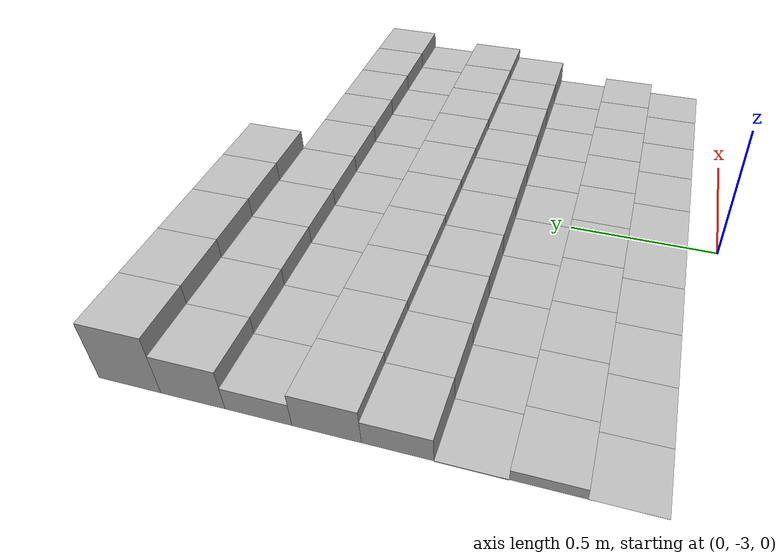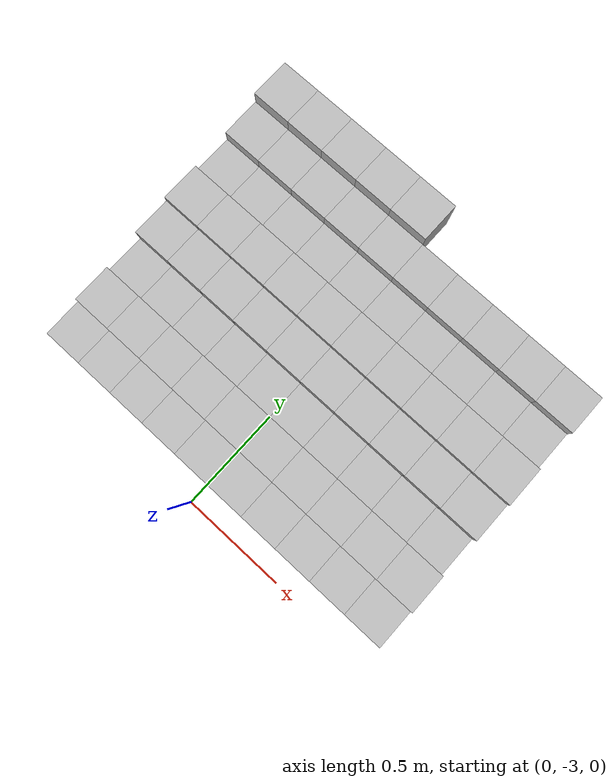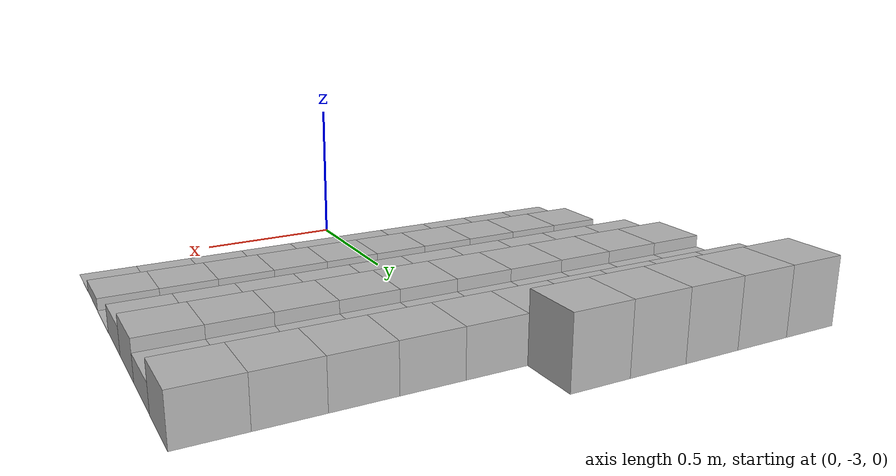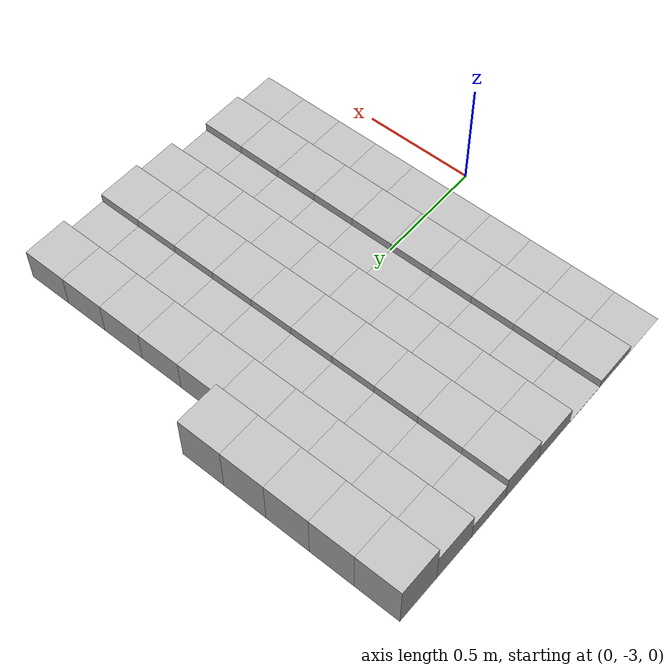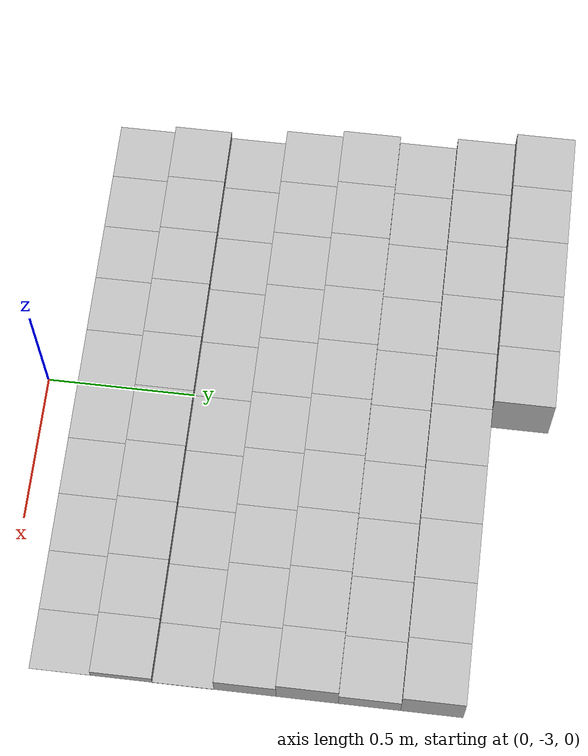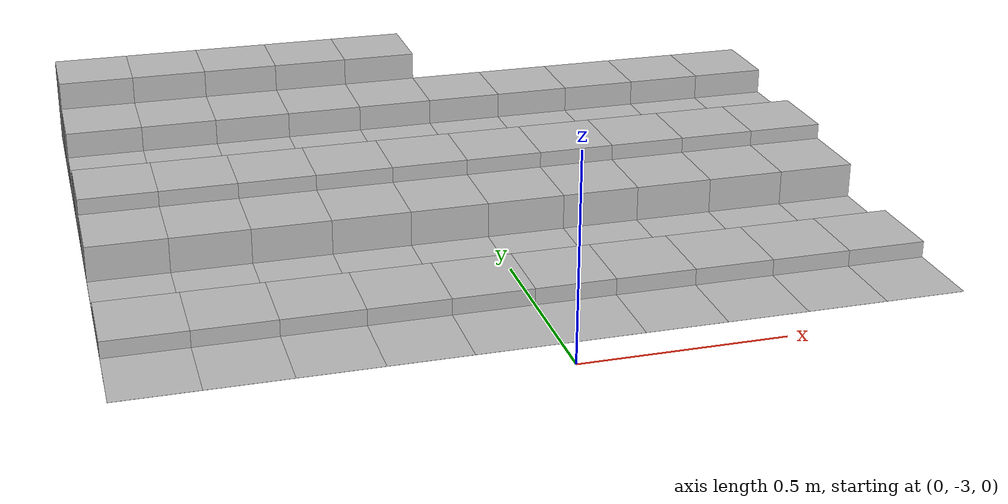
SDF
<sdf version="1.6">
 <model name="Terrain">
  <static>true</static>
  <link name="box_7_0">
   <pose>-0.9 -1.4 0.11523408829 0 0 0</pose>
   <inertial>
    <mass>1.0</mass>
    <inertia><ixx>0.0</ixx><ixy>0.0</ixy><ixz>0.0</ixz><iyy>0.0</iyy><iyz>0.0</iyz><izz>0.0</izz></inertia>
   </inertial>
   <collision name="collision"><geometry><box><size>0.2 0.2 0.23046817658</size></box></geometry></collision>
   <visual name="visual"><geometry><box><size>0.2 0.2 0.23046817658</size></box></geometry></visual>
  </link>
  <link name="box_7_1">
   <pose>-0.7 -1.4 0.11523408829 0 0 0</pose>
   <inertial>
    <mass>1.0</mass>
    <inertia><ixx>0.0</ixx><ixy>0.0</ixy><ixz>0.0</ixz><iyy>0.0</iyy><iyz>0.0</iyz><izz>0.0</izz></inertia>
   </inertial>
   <collision name="collision"><geometry><box><size>0.2 0.2 0.23046817658</size></box></geometry></collision>
   <visual name="visual"><geometry><box><size>0.2 0.2 0.23046817658</size></box></geometry></visual>
  </link>
  <link name="box_7_2">
   <pose>-0.5 -1.4 0.11523408829 0 0 0</pose>
   <inertial>
    <mass>1.0</mass>
    <inertia><ixx>0.0</ixx><ixy>0.0</ixy><ixz>0.0</ixz><iyy>0.0</iyy><iyz>0.0</iyz><izz>0.0</izz></inertia>
   </inertial>
   <collision name="collision"><geometry><box><size>0.2 0.2 0.23046817658</size></box></geometry></collision>
   <visual name="visual"><geometry><box><size>0.2 0.2 0.23046817658</size></box></geometry></visual>
  </link>
  <link name="box_7_3">
   <pose>-0.3 -1.4 0.11523408829 0 0 0</pose>
   <inertial>
    <mass>1.0</mass>
    <inertia><ixx>0.0</ixx><ixy>0.0</ixy><ixz>0.0</ixz><iyy>0.0</iyy><iyz>0.0</iyz><izz>0.0</izz></inertia>
   </inertial>
   <collision name="collision"><geometry><box><size>0.2 0.2 0.23046817658</size></box></geometry></collision>
   <visual name="visual"><geometry><box><size>0.2 0.2 0.23046817658</size></box></geometry></visual>
  </link>
  <link name="box_7_4">
   <pose>-0.1 -1.4 0.11523408829 0 0 0</pose>
   <inertial>
    <mass>1.0</mass>
    <inertia><ixx>0.0</ixx><ixy>0.0</ixy><ixz>0.0</ixz><iyy>0.0</iyy><iyz>0.0</iyz><izz>0.0</izz></inertia>
   </inertial>
   <collision name="collision"><geometry><box><size>0.2 0.2 0.23046817658</size></box></geometry></collision>
   <visual name="visual"><geometry><box><size>0.2 0.2 0.23046817658</size></box></geometry></visual>
  </link>
  <link name="box_8_0">
   <pose>-0.9 -1.6 0.0784804408751 0 0 0</pose>
   <inertial>
    <mass>1.0</mass>
    <inertia><ixx>0.0</ixx><ixy>0.0</ixy><ixz>0.0</ixz><iyy>0.0</iyy><iyz>0.0</iyz><izz>0.0</izz></inertia>
   </inertial>
   <collision name="collision"><geometry><box><size>0.2 0.2 0.15696088175</size></box></geometry></collision>
   <visual name="visual"><geometry><box><size>0.2 0.2 0.15696088175</size></box></geometry></visual>
  </link>
  <link name="box_8_1">
   <pose>-0.7 -1.6 0.0784804408751 0 0 0</pose>
   <inertial>
    <mass>1.0</mass>
    <inertia><ixx>0.0</ixx><ixy>0.0</ixy><ixz>0.0</ixz><iyy>0.0</iyy><iyz>0.0</iyz><izz>0.0</izz></inertia>
   </inertial>
   <collision name="collision"><geometry><box><size>0.2 0.2 0.15696088175</size></box></geometry></collision>
   <visual name="visual"><geometry><box><size>0.2 0.2 0.15696088175</size></box></geometry></visual>
  </link>
  <link name="box_8_2">
   <pose>-0.5 -1.6 0.0784804408751 0 0 0</pose>
   <inertial>
    <mass>1.0</mass>
    <inertia><ixx>0.0</ixx><ixy>0.0</ixy><ixz>0.0</ixz><iyy>0.0</iyy><iyz>0.0</iyz><izz>0.0</izz></inertia>
   </inertial>
   <collision name="collision"><geometry><box><size>0.2 0.2 0.15696088175</size></box></geometry></collision>
   <visual name="visual"><geometry><box><size>0.2 0.2 0.15696088175</size></box></geometry></visual>
  </link>
  <link name="box_8_3">
   <pose>-0.3 -1.6 0.0784804408751 0 0 0</pose>
   <inertial>
    <mass>1.0</mass>
    <inertia><ixx>0.0</ixx><ixy>0.0</ixy><ixz>0.0</ixz><iyy>0.0</iyy><iyz>0.0</iyz><izz>0.0</izz></inertia>
   </inertial>
   <collision name="collision"><geometry><box><size>0.2 0.2 0.15696088175</size></box></geometry></collision>
   <visual name="visual"><geometry><box><size>0.2 0.2 0.15696088175</size></box></geometry></visual>
  </link>
  <link name="box_8_4">
   <pose>-0.1 -1.6 0.0784804408751 0 0 0</pose>
   <inertial>
    <mass>1.0</mass>
    <inertia><ixx>0.0</ixx><ixy>0.0</ixy><ixz>0.0</ixz><iyy>0.0</iyy><iyz>0.0</iyz><izz>0.0</izz></inertia>
   </inertial>
   <collision name="collision"><geometry><box><size>0.2 0.2 0.15696088175</size></box></geometry></collision>
   <visual name="visual"><geometry><box><size>0.2 0.2 0.15696088175</size></box></geometry></visual>
  </link>
  <link name="box_8_5">
   <pose>0.1 -1.6 0.0784804408751 0 0 0</pose>
   <inertial>
    <mass>1.0</mass>
    <inertia><ixx>0.0</ixx><ixy>0.0</ixy><ixz>0.0</ixz><iyy>0.0</iyy><iyz>0.0</iyz><izz>0.0</izz></inertia>
   </inertial>
   <collision name="collision"><geometry><box><size>0.2 0.2 0.15696088175</size></box></geometry></collision>
   <visual name="visual"><geometry><box><size>0.2 0.2 0.15696088175</size></box></geometry></visual>
  </link>
  <link name="box_8_6">
   <pose>0.3 -1.6 0.0784804408751 0 0 0</pose>
   <inertial>
    <mass>1.0</mass>
    <inertia><ixx>0.0</ixx><ixy>0.0</ixy><ixz>0.0</ixz><iyy>0.0</iyy><iyz>0.0</iyz><izz>0.0</izz></inertia>
   </inertial>
   <collision name="collision"><geometry><box><size>0.2 0.2 0.15696088175</size></box></geometry></collision>
   <visual name="visual"><geometry><box><size>0.2 0.2 0.15696088175</size></box></geometry></visual>
  </link>
  <link name="box_8_7">
   <pose>0.5 -1.6 0.0784804408751 0 0 0</pose>
   <inertial>
    <mass>1.0</mass>
    <inertia><ixx>0.0</ixx><ixy>0.0</ixy><ixz>0.0</ixz><iyy>0.0</iyy><iyz>0.0</iyz><izz>0.0</izz></inertia>
   </inertial>
   <collision name="collision"><geometry><box><size>0.2 0.2 0.15696088175</size></box></geometry></collision>
   <visual name="visual"><geometry><box><size>0.2 0.2 0.15696088175</size></box></geometry></visual>
  </link>
  <link name="box_8_8">
   <pose>0.7 -1.6 0.0784804408751 0 0 0</pose>
   <inertial>
    <mass>1.0</mass>
    <inertia><ixx>0.0</ixx><ixy>0.0</ixy><ixz>0.0</ixz><iyy>0.0</iyy><iyz>0.0</iyz><izz>0.0</izz></inertia>
   </inertial>
   <collision name="collision"><geometry><box><size>0.2 0.2 0.15696088175</size></box></geometry></collision>
   <visual name="visual"><geometry><box><size>0.2 0.2 0.15696088175</size></box></geometry></visual>
  </link>
  <link name="box_8_9">
   <pose>0.9 -1.6 0.0784804408751 0 0 0</pose>
   <inertial>
    <mass>1.0</mass>
    <inertia><ixx>0.0</ixx><ixy>0.0</ixy><ixz>0.0</ixz><iyy>0.0</iyy><iyz>0.0</iyz><izz>0.0</izz></inertia>
   </inertial>
   <collision name="collision"><geometry><box><size>0.2 0.2 0.15696088175</size></box></geometry></collision>
   <visual name="visual"><geometry><box><size>0.2 0.2 0.15696088175</size></box></geometry></visual>
  </link>
  <link name="box_9_0">
   <pose>-0.9 -1.8 0.0445854834248 0 0 0</pose>
   <inertial>
    <mass>1.0</mass>
    <inertia><ixx>0.0</ixx><ixy>0.0</ixy><ixz>0.0</ixz><iyy>0.0</iyy><iyz>0.0</iyz><izz>0.0</izz></inertia>
   </inertial>
   <collision name="collision"><geometry><box><size>0.2 0.2 0.0891709668496</size></box></geometry></collision>
   <visual name="visual"><geometry><box><size>0.2 0.2 0.0891709668496</size></box></geometry></visual>
  </link>
  <link name="box_9_1">
   <pose>-0.7 -1.8 0.0445854834248 0 0 0</pose>
   <inertial>
    <mass>1.0</mass>
    <inertia><ixx>0.0</ixx><ixy>0.0</ixy><ixz>0.0</ixz><iyy>0.0</iyy><iyz>0.0</iyz><izz>0.0</izz></inertia>
   </inertial>
   <collision name="collision"><geometry><box><size>0.2 0.2 0.0891709668496</size></box></geometry></collision>
   <visual name="visual"><geometry><box><size>0.2 0.2 0.0891709668496</size></box></geometry></visual>
  </link>
  <link name="box_9_2">
   <pose>-0.5 -1.8 0.0445854834248 0 0 0</pose>
   <inertial>
    <mass>1.0</mass>
    <inertia><ixx>0.0</ixx><ixy>0.0</ixy><ixz>0.0</ixz><iyy>0.0</iyy><iyz>0.0</iyz><izz>0.0</izz></inertia>
   </inertial>
   <collision name="collision"><geometry><box><size>0.2 0.2 0.0891709668496</size></box></geometry></collision>
   <visual name="visual"><geometry><box><size>0.2 0.2 0.0891709668496</size></box></geometry></visual>
  </link>
  <link name="box_9_3">
   <pose>-0.3 -1.8 0.0445854834248 0 0 0</pose>
   <inertial>
    <mass>1.0</mass>
    <inertia><ixx>0.0</ixx><ixy>0.0</ixy><ixz>0.0</ixz><iyy>0.0</iyy><iyz>0.0</iyz><izz>0.0</izz></inertia>
   </inertial>
   <collision name="collision"><geometry><box><size>0.2 0.2 0.0891709668496</size></box></geometry></collision>
   <visual name="visual"><geometry><box><size>0.2 0.2 0.0891709668496</size></box></geometry></visual>
  </link>
  <link name="box_9_4">
   <pose>-0.1 -1.8 0.0445854834248 0 0 0</pose>
   <inertial>
    <mass>1.0</mass>
    <inertia><ixx>0.0</ixx><ixy>0.0</ixy><ixz>0.0</ixz><iyy>0.0</iyy><iyz>0.0</iyz><izz>0.0</izz></inertia>
   </inertial>
   <collision name="collision"><geometry><box><size>0.2 0.2 0.0891709668496</size></box></geometry></collision>
   <visual name="visual"><geometry><box><size>0.2 0.2 0.0891709668496</size></box></geometry></visual>
  </link>
  <link name="box_9_5">
   <pose>0.1 -1.8 0.0445854834248 0 0 0</pose>
   <inertial>
    <mass>1.0</mass>
    <inertia><ixx>0.0</ixx><ixy>0.0</ixy><ixz>0.0</ixz><iyy>0.0</iyy><iyz>0.0</iyz><izz>0.0</izz></inertia>
   </inertial>
   <collision name="collision"><geometry><box><size>0.2 0.2 0.0891709668496</size></box></geometry></collision>
   <visual name="visual"><geometry><box><size>0.2 0.2 0.0891709668496</size></box></geometry></visual>
  </link>
  <link name="box_9_6">
   <pose>0.3 -1.8 0.0445854834248 0 0 0</pose>
   <inertial>
    <mass>1.0</mass>
    <inertia><ixx>0.0</ixx><ixy>0.0</ixy><ixz>0.0</ixz><iyy>0.0</iyy><iyz>0.0</iyz><izz>0.0</izz></inertia>
   </inertial>
   <collision name="collision"><geometry><box><size>0.2 0.2 0.0891709668496</size></box></geometry></collision>
   <visual name="visual"><geometry><box><size>0.2 0.2 0.0891709668496</size></box></geometry></visual>
  </link>
  <link name="box_9_7">
   <pose>0.5 -1.8 0.0445854834248 0 0 0</pose>
   <inertial>
    <mass>1.0</mass>
    <inertia><ixx>0.0</ixx><ixy>0.0</ixy><ixz>0.0</ixz><iyy>0.0</iyy><iyz>0.0</iyz><izz>0.0</izz></inertia>
   </inertial>
   <collision name="collision"><geometry><box><size>0.2 0.2 0.0891709668496</size></box></geometry></collision>
   <visual name="visual"><geometry><box><size>0.2 0.2 0.0891709668496</size></box></geometry></visual>
  </link>
  <link name="box_9_8">
   <pose>0.7 -1.8 0.0445854834248 0 0 0</pose>
   <inertial>
    <mass>1.0</mass>
    <inertia><ixx>0.0</ixx><ixy>0.0</ixy><ixz>0.0</ixz><iyy>0.0</iyy><iyz>0.0</iyz><izz>0.0</izz></inertia>
   </inertial>
   <collision name="collision"><geometry><box><size>0.2 0.2 0.0891709668496</size></box></geometry></collision>
   <visual name="visual"><geometry><box><size>0.2 0.2 0.0891709668496</size></box></geometry></visual>
  </link>
  <link name="box_9_9">
   <pose>0.9 -1.8 0.0445854834248 0 0 0</pose>
   <inertial>
    <mass>1.0</mass>
    <inertia><ixx>0.0</ixx><ixy>0.0</ixy><ixz>0.0</ixz><iyy>0.0</iyy><iyz>0.0</iyz><izz>0.0</izz></inertia>
   </inertial>
   <collision name="collision"><geometry><box><size>0.2 0.2 0.0891709668496</size></box></geometry></collision>
   <visual name="visual"><geometry><box><size>0.2 0.2 0.0891709668496</size></box></geometry></visual>
  </link>
  <link name="box_10_0">
   <pose>-0.9 -2.0 0.0658738664599 0 0 0</pose>
   <inertial>
    <mass>1.0</mass>
    <inertia><ixx>0.0</ixx><ixy>0.0</ixy><ixz>0.0</ixz><iyy>0.0</iyy><iyz>0.0</iyz><izz>0.0</izz></inertia>
   </inertial>
   <collision name="collision"><geometry><box><size>0.2 0.2 0.13174773292</size></box></geometry></collision>
   <visual name="visual"><geometry><box><size>0.2 0.2 0.13174773292</size></box></geometry></visual>
  </link>
  <link name="box_10_1">
   <pose>-0.7 -2.0 0.0658738664599 0 0 0</pose>
   <inertial>
    <mass>1.0</mass>
    <inertia><ixx>0.0</ixx><ixy>0.0</ixy><ixz>0.0</ixz><iyy>0.0</iyy><iyz>0.0</iyz><izz>0.0</izz></inertia>
   </inertial>
   <collision name="collision"><geometry><box><size>0.2 0.2 0.13174773292</size></box></geometry></collision>
   <visual name="visual"><geometry><box><size>0.2 0.2 0.13174773292</size></box></geometry></visual>
  </link>
  <link name="box_10_2">
   <pose>-0.5 -2.0 0.0658738664599 0 0 0</pose>
   <inertial>
    <mass>1.0</mass>
    <inertia><ixx>0.0</ixx><ixy>0.0</ixy><ixz>0.0</ixz><iyy>0.0</iyy><iyz>0.0</iyz><izz>0.0</izz></inertia>
   </inertial>
   <collision name="collision"><geometry><box><size>0.2 0.2 0.13174773292</size></box></geometry></collision>
   <visual name="visual"><geometry><box><size>0.2 0.2 0.13174773292</size></box></geometry></visual>
  </link>
  <link name="box_10_3">
   <pose>-0.3 -2.0 0.0658738664599 0 0 0</pose>
   <inertial>
    <mass>1.0</mass>
    <inertia><ixx>0.0</ixx><ixy>0.0</ixy><ixz>0.0</ixz><iyy>0.0</iyy><iyz>0.0</iyz><izz>0.0</izz></inertia>
   </inertial>
   <collision name="collision"><geometry><box><size>0.2 0.2 0.13174773292</size></box></geometry></collision>
   <visual name="visual"><geometry><box><size>0.2 0.2 0.13174773292</size></box></geometry></visual>
  </link>
  <link name="box_10_4">
   <pose>-0.1 -2.0 0.0658738664599 0 0 0</pose>
   <inertial>
    <mass>1.0</mass>
    <inertia><ixx>0.0</ixx><ixy>0.0</ixy><ixz>0.0</ixz><iyy>0.0</iyy><iyz>0.0</iyz><izz>0.0</izz></inertia>
   </inertial>
   <collision name="collision"><geometry><box><size>0.2 0.2 0.13174773292</size></box></geometry></collision>
   <visual name="visual"><geometry><box><size>0.2 0.2 0.13174773292</size></box></geometry></visual>
  </link>
  <link name="box_10_5">
   <pose>0.1 -2.0 0.0658738664599 0 0 0</pose>
   <inertial>
    <mass>1.0</mass>
    <inertia><ixx>0.0</ixx><ixy>0.0</ixy><ixz>0.0</ixz><iyy>0.0</iyy><iyz>0.0</iyz><izz>0.0</izz></inertia>
   </inertial>
   <collision name="collision"><geometry><box><size>0.2 0.2 0.13174773292</size></box></geometry></collision>
   <visual name="visual"><geometry><box><size>0.2 0.2 0.13174773292</size></box></geometry></visual>
  </link>
  <link name="box_10_6">
   <pose>0.3 -2.0 0.0658738664599 0 0 0</pose>
   <inertial>
    <mass>1.0</mass>
    <inertia><ixx>0.0</ixx><ixy>0.0</ixy><ixz>0.0</ixz><iyy>0.0</iyy><iyz>0.0</iyz><izz>0.0</izz></inertia>
   </inertial>
   <collision name="collision"><geometry><box><size>0.2 0.2 0.13174773292</size></box></geometry></collision>
   <visual name="visual"><geometry><box><size>0.2 0.2 0.13174773292</size></box></geometry></visual>
  </link>
  <link name="box_10_7">
   <pose>0.5 -2.0 0.0658738664599 0 0 0</pose>
   <inertial>
    <mass>1.0</mass>
    <inertia><ixx>0.0</ixx><ixy>0.0</ixy><ixz>0.0</ixz><iyy>0.0</iyy><iyz>0.0</iyz><izz>0.0</izz></inertia>
   </inertial>
   <collision name="collision"><geometry><box><size>0.2 0.2 0.13174773292</size></box></geometry></collision>
   <visual name="visual"><geometry><box><size>0.2 0.2 0.13174773292</size></box></geometry></visual>
  </link>
  <link name="box_10_8">
   <pose>0.7 -2.0 0.0658738664599 0 0 0</pose>
   <inertial>
    <mass>1.0</mass>
    <inertia><ixx>0.0</ixx><ixy>0.0</ixy><ixz>0.0</ixz><iyy>0.0</iyy><iyz>0.0</iyz><izz>0.0</izz></inertia>
   </inertial>
   <collision name="collision"><geometry><box><size>0.2 0.2 0.13174773292</size></box></geometry></collision>
   <visual name="visual"><geometry><box><size>0.2 0.2 0.13174773292</size></box></geometry></visual>
  </link>
  <link name="box_10_9">
   <pose>0.9 -2.0 0.0658738664599 0 0 0</pose>
   <inertial>
    <mass>1.0</mass>
    <inertia><ixx>0.0</ixx><ixy>0.0</ixy><ixz>0.0</ixz><iyy>0.0</iyy><iyz>0.0</iyz><izz>0.0</izz></inertia>
   </inertial>
   <collision name="collision"><geometry><box><size>0.2 0.2 0.13174773292</size></box></geometry></collision>
   <visual name="visual"><geometry><box><size>0.2 0.2 0.13174773292</size></box></geometry></visual>
  </link>
  <link name="box_11_0">
   <pose>-0.9 -2.2 0.0454036786359 0 0 0</pose>
   <inertial>
    <mass>1.0</mass>
    <inertia><ixx>0.0</ixx><ixy>0.0</ixy><ixz>0.0</ixz><iyy>0.0</iyy><iyz>0.0</iyz><izz>0.0</izz></inertia>
   </inertial>
   <collision name="collision"><geometry><box><size>0.2 0.2 0.0908073572718</size></box></geometry></collision>
   <visual name="visual"><geometry><box><size>0.2 0.2 0.0908073572718</size></box></geometry></visual>
  </link>
  <link name="box_11_1">
   <pose>-0.7 -2.2 0.0454036786359 0 0 0</pose>
   <inertial>
    <mass>1.0</mass>
    <inertia><ixx>0.0</ixx><ixy>0.0</ixy><ixz>0.0</ixz><iyy>0.0</iyy><iyz>0.0</iyz><izz>0.0</izz></inertia>
   </inertial>
   <collision name="collision"><geometry><box><size>0.2 0.2 0.0908073572718</size></box></geometry></collision>
   <visual name="visual"><geometry><box><size>0.2 0.2 0.0908073572718</size></box></geometry></visual>
  </link>
  <link name="box_11_2">
   <pose>-0.5 -2.2 0.0454036786359 0 0 0</pose>
   <inertial>
    <mass>1.0</mass>
    <inertia><ixx>0.0</ixx><ixy>0.0</ixy><ixz>0.0</ixz><iyy>0.0</iyy><iyz>0.0</iyz><izz>0.0</izz></inertia>
   </inertial>
   <collision name="collision"><geometry><box><size>0.2 0.2 0.0908073572718</size></box></geometry></collision>
   <visual name="visual"><geometry><box><size>0.2 0.2 0.0908073572718</size></box></geometry></visual>
  </link>
  <link name="box_11_3">
   <pose>-0.3 -2.2 0.0454036786359 0 0 0</pose>
   <inertial>
    <mass>1.0</mass>
    <inertia><ixx>0.0</ixx><ixy>0.0</ixy><ixz>0.0</ixz><iyy>0.0</iyy><iyz>0.0</iyz><izz>0.0</izz></inertia>
   </inertial>
   <collision name="collision"><geometry><box><size>0.2 0.2 0.0908073572718</size></box></geometry></collision>
   <visual name="visual"><geometry><box><size>0.2 0.2 0.0908073572718</size></box></geometry></visual>
  </link>
  <link name="box_11_4">
   <pose>-0.1 -2.2 0.0454036786359 0 0 0</pose>
   <inertial>
    <mass>1.0</mass>
    <inertia><ixx>0.0</ixx><ixy>0.0</ixy><ixz>0.0</ixz><iyy>0.0</iyy><iyz>0.0</iyz><izz>0.0</izz></inertia>
   </inertial>
   <collision name="collision"><geometry><box><size>0.2 0.2 0.0908073572718</size></box></geometry></collision>
   <visual name="visual"><geometry><box><size>0.2 0.2 0.0908073572718</size></box></geometry></visual>
  </link>
  <link name="box_11_5">
   <pose>0.1 -2.2 0.0454036786359 0 0 0</pose>
   <inertial>
    <mass>1.0</mass>
    <inertia><ixx>0.0</ixx><ixy>0.0</ixy><ixz>0.0</ixz><iyy>0.0</iyy><iyz>0.0</iyz><izz>0.0</izz></inertia>
   </inertial>
   <collision name="collision"><geometry><box><size>0.2 0.2 0.0908073572718</size></box></geometry></collision>
   <visual name="visual"><geometry><box><size>0.2 0.2 0.0908073572718</size></box></geometry></visual>
  </link>
  <link name="box_11_6">
   <pose>0.3 -2.2 0.0454036786359 0 0 0</pose>
   <inertial>
    <mass>1.0</mass>
    <inertia><ixx>0.0</ixx><ixy>0.0</ixy><ixz>0.0</ixz><iyy>0.0</iyy><iyz>0.0</iyz><izz>0.0</izz></inertia>
   </inertial>
   <collision name="collision"><geometry><box><size>0.2 0.2 0.0908073572718</size></box></geometry></collision>
   <visual name="visual"><geometry><box><size>0.2 0.2 0.0908073572718</size></box></geometry></visual>
  </link>
  <link name="box_11_7">
   <pose>0.5 -2.2 0.0454036786359 0 0 0</pose>
   <inertial>
    <mass>1.0</mass>
    <inertia><ixx>0.0</ixx><ixy>0.0</ixy><ixz>0.0</ixz><iyy>0.0</iyy><iyz>0.0</iyz><izz>0.0</izz></inertia>
   </inertial>
   <collision name="collision"><geometry><box><size>0.2 0.2 0.0908073572718</size></box></geometry></collision>
   <visual name="visual"><geometry><box><size>0.2 0.2 0.0908073572718</size></box></geometry></visual>
  </link>
  <link name="box_11_8">
   <pose>0.7 -2.2 0.0454036786359 0 0 0</pose>
   <inertial>
    <mass>1.0</mass>
    <inertia><ixx>0.0</ixx><ixy>0.0</ixy><ixz>0.0</ixz><iyy>0.0</iyy><iyz>0.0</iyz><izz>0.0</izz></inertia>
   </inertial>
   <collision name="collision"><geometry><box><size>0.2 0.2 0.0908073572718</size></box></geometry></collision>
   <visual name="visual"><geometry><box><size>0.2 0.2 0.0908073572718</size></box></geometry></visual>
  </link>
  <link name="box_11_9">
   <pose>0.9 -2.2 0.0454036786359 0 0 0</pose>
   <inertial>
    <mass>1.0</mass>
    <inertia><ixx>0.0</ixx><ixy>0.0</ixy><ixz>0.0</ixz><iyy>0.0</iyy><iyz>0.0</iyz><izz>0.0</izz></inertia>
   </inertial>
   <collision name="collision"><geometry><box><size>0.2 0.2 0.0908073572718</size></box></geometry></collision>
   <visual name="visual"><geometry><box><size>0.2 0.2 0.0908073572718</size></box></geometry></visual>
  </link>
  <link name="box_12_0">
   <pose>-0.9 -2.4 -0.00139002312442 0 0 0</pose>
   <inertial>
    <mass>1.0</mass>
    <inertia><ixx>0.0</ixx><ixy>0.0</ixy><ixz>0.0</ixz><iyy>0.0</iyy><iyz>0.0</iyz><izz>0.0</izz></inertia>
   </inertial>
   <collision name="collision"><geometry><box><size>0.2 0.2 -0.00278004624885</size></box></geometry></collision>
   <visual name="visual"><geometry><box><size>0.2 0.2 -0.00278004624885</size></box></geometry></visual>
  </link>
  <link name="box_12_1">
   <pose>-0.7 -2.4 -0.00139002312442 0 0 0</pose>
   <inertial>
    <mass>1.0</mass>
    <inertia><ixx>0.0</ixx><ixy>0.0</ixy><ixz>0.0</ixz><iyy>0.0</iyy><iyz>0.0</iyz><izz>0.0</izz></inertia>
   </inertial>
   <collision name="collision"><geometry><box><size>0.2 0.2 -0.00278004624885</size></box></geometry></collision>
   <visual name="visual"><geometry><box><size>0.2 0.2 -0.00278004624885</size></box></geometry></visual>
  </link>
  <link name="box_12_2">
   <pose>-0.5 -2.4 -0.00139002312442 0 0 0</pose>
   <inertial>
    <mass>1.0</mass>
    <inertia><ixx>0.0</ixx><ixy>0.0</ixy><ixz>0.0</ixz><iyy>0.0</iyy><iyz>0.0</iyz><izz>0.0</izz></inertia>
   </inertial>
   <collision name="collision"><geometry><box><size>0.2 0.2 -0.00278004624885</size></box></geometry></collision>
   <visual name="visual"><geometry><box><size>0.2 0.2 -0.00278004624885</size></box></geometry></visual>
  </link>
  <link name="box_12_3">
   <pose>-0.3 -2.4 -0.00139002312442 0 0 0</pose>
   <inertial>
    <mass>1.0</mass>
    <inertia><ixx>0.0</ixx><ixy>0.0</ixy><ixz>0.0</ixz><iyy>0.0</iyy><iyz>0.0</iyz><izz>0.0</izz></inertia>
   </inertial>
   <collision name="collision"><geometry><box><size>0.2 0.2 -0.00278004624885</size></box></geometry></collision>
   <visual name="visual"><geometry><box><size>0.2 0.2 -0.00278004624885</size></box></geometry></visual>
  </link>
  <link name="box_12_4">
   <pose>-0.1 -2.4 -0.00139002312442 0 0 0</pose>
   <inertial>
    <mass>1.0</mass>
    <inertia><ixx>0.0</ixx><ixy>0.0</ixy><ixz>0.0</ixz><iyy>0.0</iyy><iyz>0.0</iyz><izz>0.0</izz></inertia>
   </inertial>
   <collision name="collision"><geometry><box><size>0.2 0.2 -0.00278004624885</size></box></geometry></collision>
   <visual name="visual"><geometry><box><size>0.2 0.2 -0.00278004624885</size></box></geometry></visual>
  </link>
  <link name="box_12_5">
   <pose>0.1 -2.4 -0.00139002312442 0 0 0</pose>
   <inertial>
    <mass>1.0</mass>
    <inertia><ixx>0.0</ixx><ixy>0.0</ixy><ixz>0.0</ixz><iyy>0.0</iyy><iyz>0.0</iyz><izz>0.0</izz></inertia>
   </inertial>
   <collision name="collision"><geometry><box><size>0.2 0.2 -0.00278004624885</size></box></geometry></collision>
   <visual name="visual"><geometry><box><size>0.2 0.2 -0.00278004624885</size></box></geometry></visual>
  </link>
  <link name="box_12_6">
   <pose>0.3 -2.4 -0.00139002312442 0 0 0</pose>
   <inertial>
    <mass>1.0</mass>
    <inertia><ixx>0.0</ixx><ixy>0.0</ixy><ixz>0.0</ixz><iyy>0.0</iyy><iyz>0.0</iyz><izz>0.0</izz></inertia>
   </inertial>
   <collision name="collision"><geometry><box><size>0.2 0.2 -0.00278004624885</size></box></geometry></collision>
   <visual name="visual"><geometry><box><size>0.2 0.2 -0.00278004624885</size></box></geometry></visual>
  </link>
  <link name="box_12_7">
   <pose>0.5 -2.4 -0.00139002312442 0 0 0</pose>
   <inertial>
    <mass>1.0</mass>
    <inertia><ixx>0.0</ixx><ixy>0.0</ixy><ixz>0.0</ixz><iyy>0.0</iyy><iyz>0.0</iyz><izz>0.0</izz></inertia>
   </inertial>
   <collision name="collision"><geometry><box><size>0.2 0.2 -0.00278004624885</size></box></geometry></collision>
   <visual name="visual"><geometry><box><size>0.2 0.2 -0.00278004624885</size></box></geometry></visual>
  </link>
  <link name="box_12_8">
   <pose>0.7 -2.4 -0.00139002312442 0 0 0</pose>
   <inertial>
    <mass>1.0</mass>
    <inertia><ixx>0.0</ixx><ixy>0.0</ixy><ixz>0.0</ixz><iyy>0.0</iyy><iyz>0.0</iyz><izz>0.0</izz></inertia>
   </inertial>
   <collision name="collision"><geometry><box><size>0.2 0.2 -0.00278004624885</size></box></geometry></collision>
   <visual name="visual"><geometry><box><size>0.2 0.2 -0.00278004624885</size></box></geometry></visual>
  </link>
  <link name="box_12_9">
   <pose>0.9 -2.4 -0.00139002312442 0 0 0</pose>
   <inertial>
    <mass>1.0</mass>
    <inertia><ixx>0.0</ixx><ixy>0.0</ixy><ixz>0.0</ixz><iyy>0.0</iyy><iyz>0.0</iyz><izz>0.0</izz></inertia>
   </inertial>
   <collision name="collision"><geometry><box><size>0.2 0.2 -0.00278004624885</size></box></geometry></collision>
   <visual name="visual"><geometry><box><size>0.2 0.2 -0.00278004624885</size></box></geometry></visual>
  </link>
  <link name="box_13_0">
   <pose>-0.9 -2.6 0.0208586016667 0 0 0</pose>
   <inertial>
    <mass>1.0</mass>
    <inertia><ixx>0.0</ixx><ixy>0.0</ixy><ixz>0.0</ixz><iyy>0.0</iyy><iyz>0.0</iyz><izz>0.0</izz></inertia>
   </inertial>
   <collision name="collision"><geometry><box><size>0.2 0.2 0.0417172033335</size></box></geometry></collision>
   <visual name="visual"><geometry><box><size>0.2 0.2 0.0417172033335</size></box></geometry></visual>
  </link>
  <link name="box_13_1">
   <pose>-0.7 -2.6 0.0208586016667 0 0 0</pose>
   <inertial>
    <mass>1.0</mass>
    <inertia><ixx>0.0</ixx><ixy>0.0</ixy><ixz>0.0</ixz><iyy>0.0</iyy><iyz>0.0</iyz><izz>0.0</izz></inertia>
   </inertial>
   <collision name="collision"><geometry><box><size>0.2 0.2 0.0417172033335</size></box></geometry></collision>
   <visual name="visual"><geometry><box><size>0.2 0.2 0.0417172033335</size></box></geometry></visual>
  </link>
  <link name="box_13_2">
   <pose>-0.5 -2.6 0.0208586016667 0 0 0</pose>
   <inertial>
    <mass>1.0</mass>
    <inertia><ixx>0.0</ixx><ixy>0.0</ixy><ixz>0.0</ixz><iyy>0.0</iyy><iyz>0.0</iyz><izz>0.0</izz></inertia>
   </inertial>
   <collision name="collision"><geometry><box><size>0.2 0.2 0.0417172033335</size></box></geometry></collision>
   <visual name="visual"><geometry><box><size>0.2 0.2 0.0417172033335</size></box></geometry></visual>
  </link>
  <link name="box_13_3">
   <pose>-0.3 -2.6 0.0208586016667 0 0 0</pose>
   <inertial>
    <mass>1.0</mass>
    <inertia><ixx>0.0</ixx><ixy>0.0</ixy><ixz>0.0</ixz><iyy>0.0</iyy><iyz>0.0</iyz><izz>0.0</izz></inertia>
   </inertial>
   <collision name="collision"><geometry><box><size>0.2 0.2 0.0417172033335</size></box></geometry></collision>
   <visual name="visual"><geometry><box><size>0.2 0.2 0.0417172033335</size></box></geometry></visual>
  </link>
  <link name="box_13_4">
   <pose>-0.1 -2.6 0.0208586016667 0 0 0</pose>
   <inertial>
    <mass>1.0</mass>
    <inertia><ixx>0.0</ixx><ixy>0.0</ixy><ixz>0.0</ixz><iyy>0.0</iyy><iyz>0.0</iyz><izz>0.0</izz></inertia>
   </inertial>
   <collision name="collision"><geometry><box><size>0.2 0.2 0.0417172033335</size></box></geometry></collision>
   <visual name="visual"><geometry><box><size>0.2 0.2 0.0417172033335</size></box></geometry></visual>
  </link>
  <link name="box_13_5">
   <pose>0.1 -2.6 0.0208586016667 0 0 0</pose>
   <inertial>
    <mass>1.0</mass>
    <inertia><ixx>0.0</ixx><ixy>0.0</ixy><ixz>0.0</ixz><iyy>0.0</iyy><iyz>0.0</iyz><izz>0.0</izz></inertia>
   </inertial>
   <collision name="collision"><geometry><box><size>0.2 0.2 0.0417172033335</size></box></geometry></collision>
   <visual name="visual"><geometry><box><size>0.2 0.2 0.0417172033335</size></box></geometry></visual>
  </link>
  <link name="box_13_6">
   <pose>0.3 -2.6 0.0208586016667 0 0 0</pose>
   <inertial>
    <mass>1.0</mass>
    <inertia><ixx>0.0</ixx><ixy>0.0</ixy><ixz>0.0</ixz><iyy>0.0</iyy><iyz>0.0</iyz><izz>0.0</izz></inertia>
   </inertial>
   <collision name="collision"><geometry><box><size>0.2 0.2 0.0417172033335</size></box></geometry></collision>
   <visual name="visual"><geometry><box><size>0.2 0.2 0.0417172033335</size></box></geometry></visual>
  </link>
  <link name="box_13_7">
   <pose>0.5 -2.6 0.0208586016667 0 0 0</pose>
   <inertial>
    <mass>1.0</mass>
    <inertia><ixx>0.0</ixx><ixy>0.0</ixy><ixz>0.0</ixz><iyy>0.0</iyy><iyz>0.0</iyz><izz>0.0</izz></inertia>
   </inertial>
   <collision name="collision"><geometry><box><size>0.2 0.2 0.0417172033335</size></box></geometry></collision>
   <visual name="visual"><geometry><box><size>0.2 0.2 0.0417172033335</size></box></geometry></visual>
  </link>
  <link name="box_13_8">
   <pose>0.7 -2.6 0.0208586016667 0 0 0</pose>
   <inertial>
    <mass>1.0</mass>
    <inertia><ixx>0.0</ixx><ixy>0.0</ixy><ixz>0.0</ixz><iyy>0.0</iyy><iyz>0.0</iyz><izz>0.0</izz></inertia>
   </inertial>
   <collision name="collision"><geometry><box><size>0.2 0.2 0.0417172033335</size></box></geometry></collision>
   <visual name="visual"><geometry><box><size>0.2 0.2 0.0417172033335</size></box></geometry></visual>
  </link>
  <link name="box_13_9">
   <pose>0.9 -2.6 0.0208586016667 0 0 0</pose>
   <inertial>
    <mass>1.0</mass>
    <inertia><ixx>0.0</ixx><ixy>0.0</ixy><ixz>0.0</ixz><iyy>0.0</iyy><iyz>0.0</iyz><izz>0.0</izz></inertia>
   </inertial>
   <collision name="collision"><geometry><box><size>0.2 0.2 0.0417172033335</size></box></geometry></collision>
   <visual name="visual"><geometry><box><size>0.2 0.2 0.0417172033335</size></box></geometry></visual>
  </link>
  <link name="box_14_0">
   <pose>-0.9 -2.8 -0.000205411736844 0 0 0</pose>
   <inertial>
    <mass>1.0</mass>
    <inertia><ixx>0.0</ixx><ixy>0.0</ixy><ixz>0.0</ixz><iyy>0.0</iyy><iyz>0.0</iyz><izz>0.0</izz></inertia>
   </inertial>
   <collision name="collision">
    <geometry><box><size>0.2 0.2 -0.000410823473687</size></box></geometry>
   </collision>
   <visual name="visual"><geometry><box><size>0.2 0.2 -0.000410823473687</size></box></geometry></visual>
  </link>
  <link name="box_14_1">
   <pose>-0.7 -2.8 -0.000205411736844 0 0 0</pose>
   <inertial>
    <mass>1.0</mass>
    <inertia><ixx>0.0</ixx><ixy>0.0</ixy><ixz>0.0</ixz><iyy>0.0</iyy><iyz>0.0</iyz><izz>0.0</izz></inertia>
   </inertial>
   <collision name="collision">
    <geometry><box><size>0.2 0.2 -0.000410823473687</size></box></geometry>
   </collision>
   <visual name="visual"><geometry><box><size>0.2 0.2 -0.000410823473687</size></box></geometry></visual>
  </link>
  <link name="box_14_2">
   <pose>-0.5 -2.8 -0.000205411736844 0 0 0</pose>
   <inertial>
    <mass>1.0</mass>
    <inertia><ixx>0.0</ixx><ixy>0.0</ixy><ixz>0.0</ixz><iyy>0.0</iyy><iyz>0.0</iyz><izz>0.0</izz></inertia>
   </inertial>
   <collision name="collision">
    <geometry><box><size>0.2 0.2 -0.000410823473687</size></box></geometry>
   </collision>
   <visual name="visual"><geometry><box><size>0.2 0.2 -0.000410823473687</size></box></geometry></visual>
  </link>
  <link name="box_14_3">
   <pose>-0.3 -2.8 -0.000205411736844 0 0 0</pose>
   <inertial>
    <mass>1.0</mass>
    <inertia><ixx>0.0</ixx><ixy>0.0</ixy><ixz>0.0</ixz><iyy>0.0</iyy><iyz>0.0</iyz><izz>0.0</izz></inertia>
   </inertial>
   <collision name="collision">
    <geometry><box><size>0.2 0.2 -0.000410823473687</size></box></geometry>
   </collision>
   <visual name="visual"><geometry><box><size>0.2 0.2 -0.000410823473687</size></box></geometry></visual>
  </link>
  <link name="box_14_4">
   <pose>-0.1 -2.8 -0.000205411736844 0 0 0</pose>
   <inertial>
    <mass>1.0</mass>
    <inertia><ixx>0.0</ixx><ixy>0.0</ixy><ixz>0.0</ixz><iyy>0.0</iyy><iyz>0.0</iyz><izz>0.0</izz></inertia>
   </inertial>
   <collision name="collision">
    <geometry><box><size>0.2 0.2 -0.000410823473687</size></box></geometry>
   </collision>
   <visual name="visual"><geometry><box><size>0.2 0.2 -0.000410823473687</size></box></geometry></visual>
  </link>
  <link name="box_14_5">
   <pose>0.1 -2.8 -0.000205411736844 0 0 0</pose>
   <inertial>
    <mass>1.0</mass>
    <inertia><ixx>0.0</ixx><ixy>0.0</ixy><ixz>0.0</ixz><iyy>0.0</iyy><iyz>0.0</iyz><izz>0.0</izz></inertia>
   </inertial>
   <collision name="collision">
    <geometry><box><size>0.2 0.2 -0.000410823473687</size></box></geometry>
   </collision>
   <visual name="visual"><geometry><box><size>0.2 0.2 -0.000410823473687</size></box></geometry></visual>
  </link>
  <link name="box_14_6">
   <pose>0.3 -2.8 -0.000205411736844 0 0 0</pose>
   <inertial>
    <mass>1.0</mass>
    <inertia><ixx>0.0</ixx><ixy>0.0</ixy><ixz>0.0</ixz><iyy>0.0</iyy><iyz>0.0</iyz><izz>0.0</izz></inertia>
   </inertial>
   <collision name="collision">
    <geometry><box><size>0.2 0.2 -0.000410823473687</size></box></geometry>
   </collision>
   <visual name="visual"><geometry><box><size>0.2 0.2 -0.000410823473687</size></box></geometry></visual>
  </link>
  <link name="box_14_7">
   <pose>0.5 -2.8 -0.000205411736844 0 0 0</pose>
   <inertial>
    <mass>1.0</mass>
    <inertia><ixx>0.0</ixx><ixy>0.0</ixy><ixz>0.0</ixz><iyy>0.0</iyy><iyz>0.0</iyz><izz>0.0</izz></inertia>
   </inertial>
   <collision name="collision">
    <geometry><box><size>0.2 0.2 -0.000410823473687</size></box></geometry>
   </collision>
   <visual name="visual"><geometry><box><size>0.2 0.2 -0.000410823473687</size></box></geometry></visual>
  </link>
  <link name="box_14_8">
   <pose>0.7 -2.8 -0.000205411736844 0 0 0</pose>
   <inertial>
    <mass>1.0</mass>
    <inertia><ixx>0.0</ixx><ixy>0.0</ixy><ixz>0.0</ixz><iyy>0.0</iyy><iyz>0.0</iyz><izz>0.0</izz></inertia>
   </inertial>
   <collision name="collision">
    <geometry><box><size>0.2 0.2 -0.000410823473687</size></box></geometry>
   </collision>
   <visual name="visual"><geometry><box><size>0.2 0.2 -0.000410823473687</size></box></geometry></visual>
  </link>
  <link name="box_14_9">
   <pose>0.9 -2.8 -0.000205411736844 0 0 0</pose>
   <inertial>
    <mass>1.0</mass>
    <inertia><ixx>0.0</ixx><ixy>0.0</ixy><ixz>0.0</ixz><iyy>0.0</iyy><iyz>0.0</iyz><izz>0.0</izz></inertia>
   </inertial>
   <collision name="collision">
    <geometry><box><size>0.2 0.2 -0.000410823473687</size></box></geometry>
   </collision>
   <visual name="visual"><geometry><box><size>0.2 0.2 -0.000410823473687</size></box></geometry></visual>
  </link>
 </model>
</sdf>
